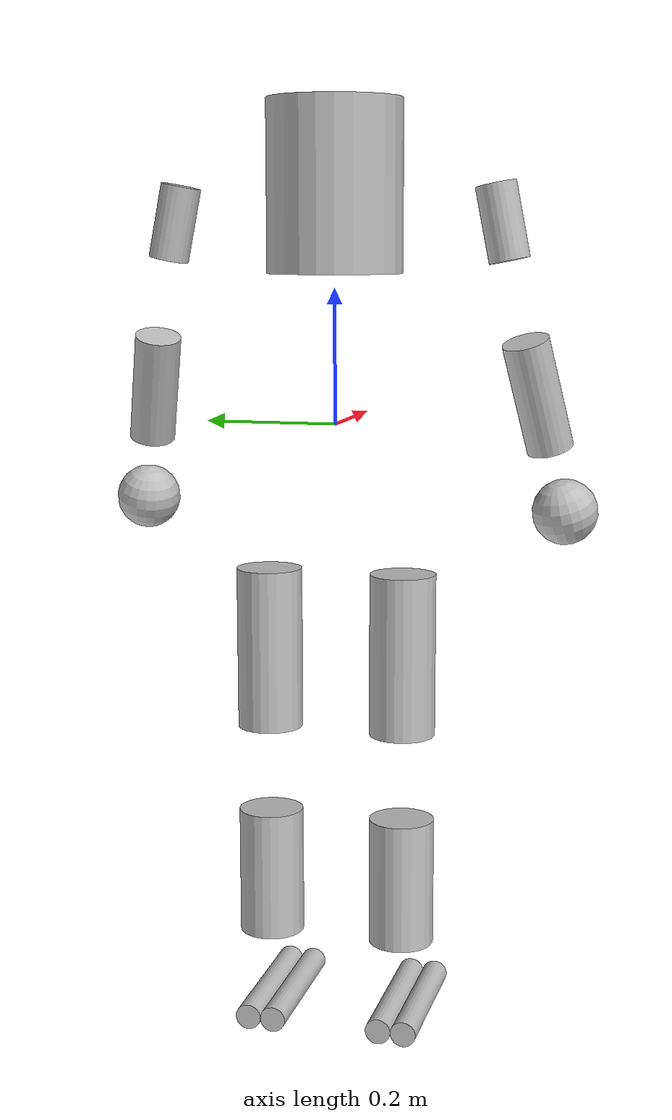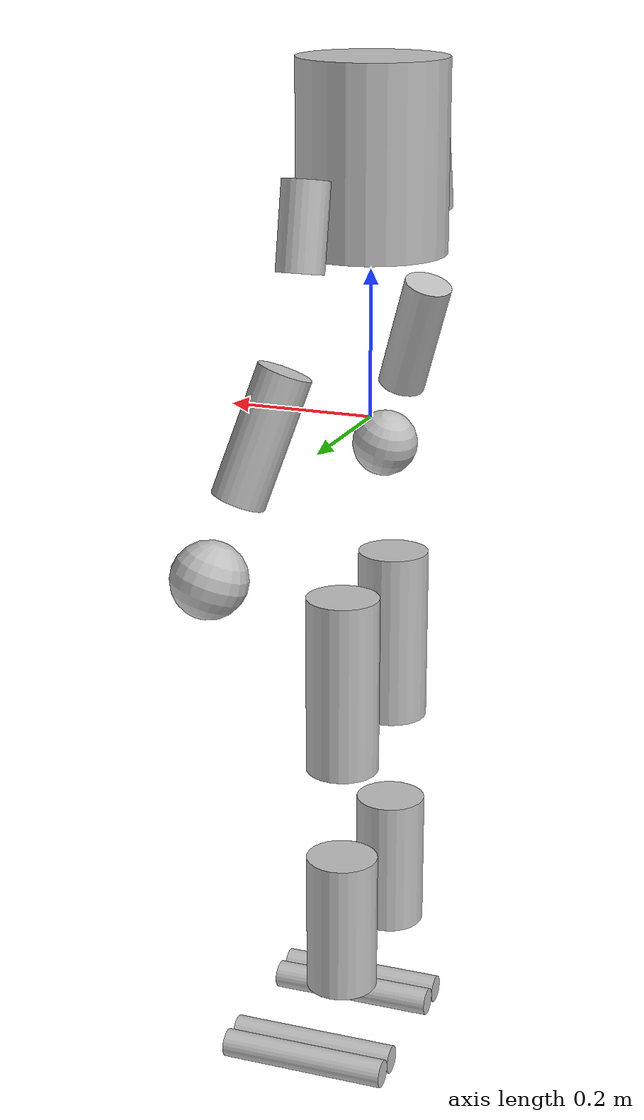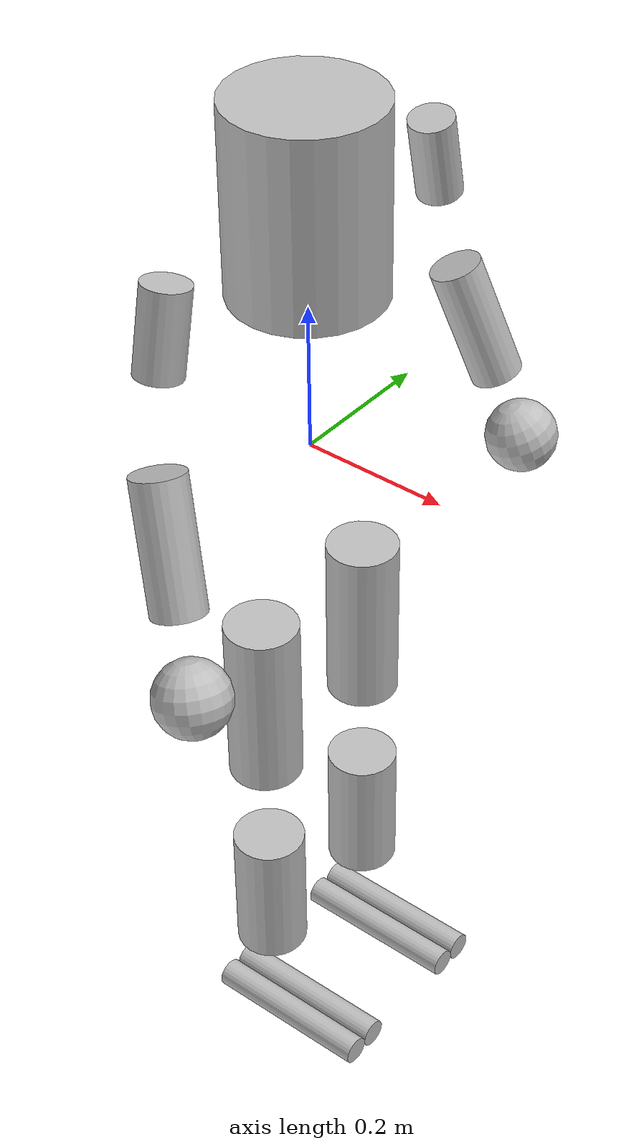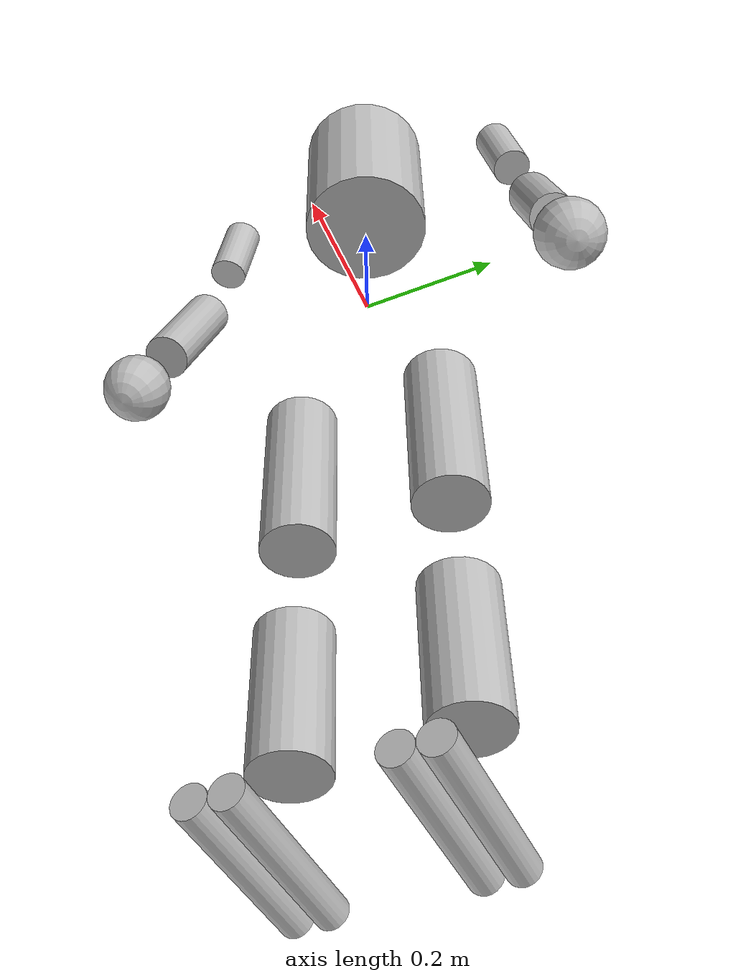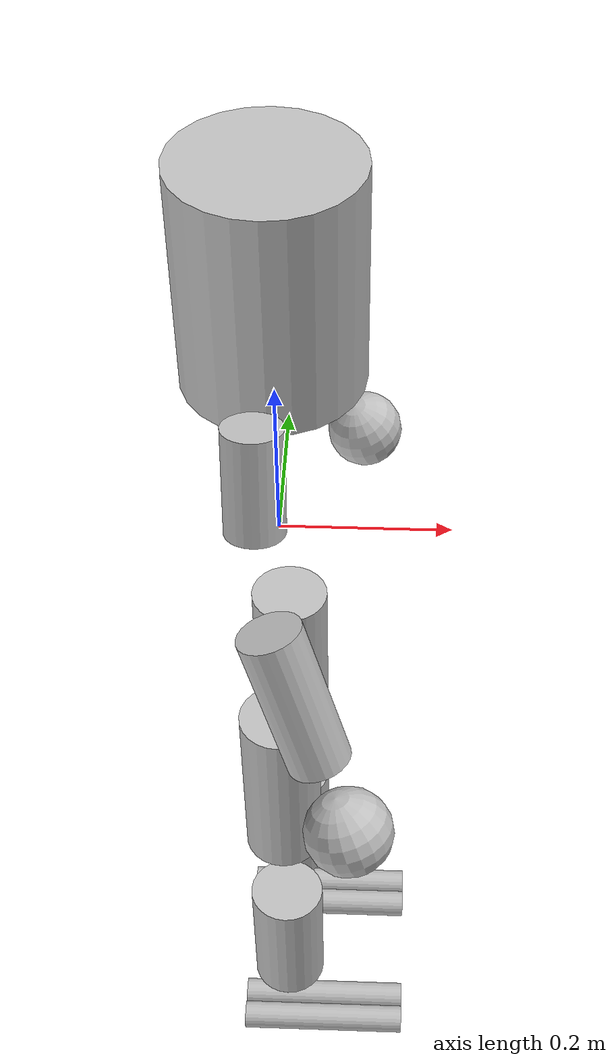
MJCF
<?xml version='1.0' encoding='utf-8'?>
<mujoco model="gr1t1_description">
  <compiler angle="radian" boundmass="1e-06" boundinertia="1e-08" meshdir=".." />
  <worldbody>
    <body name="base">
      <joint type="free" />
      <geom size="0.1 0.125" pos="0 0 0.3465" type="cylinder" rgba="0.752941 0.752941 0.752941 1" />
      <geom size="0.03 0.055" pos="0 0.247895 0.294678" quat="0.995004 0.0998334 0 0" type="cylinder" rgba="0.752941 0.752941 0.752941 1" />
      <geom size="0.035 0.085" pos="0.0356115 0.298303 0.0460688" quat="0.983831 0.0987124 -0.148692 -0.0149189" type="cylinder" rgba="0.752941 0.752941 0.752941 1" />
      <geom size="0.05" pos="0.0922184 0.334672 -0.133275" quat="0.983831 0.0987124 -0.148692 -0.0149189" rgba="0.75294 0.75294 0.75294 1" />
      <geom size="0.03 0.055" pos="0 -0.247915 0.294677" quat="0.995004 -0.0998334 0 0" type="cylinder" rgba="0.752941 0.752941 0.752941 1" />
      <geom size="0.035 0.085" pos="0.0356102 -0.298294 0.0460821" quat="0.983831 -0.0987124 -0.148692 0.0149189" type="cylinder" rgba="0.752941 0.752941 0.752941 1" />
      <geom size="0.05" pos="0.0922112 -0.334632 -0.133249" quat="0.983831 -0.0987124 -0.148692 0.0149189" rgba="0.75294 0.75294 0.75294 1" />
      <body name="l_thigh_roll" pos="-0.047999 0.105 -0.057493">
        <inertial pos="0.04163 3.4568e-05 -0.0021382" quat="0.575529 0.581908 -0.40597 0.406619" mass="1.1437" diaginertia="0.00117548 0.00100413 0.000943892" />
        <joint name="l_hip_roll" pos="0 0 0" axis="1 0 1.221e-05" range="-0.09 0.79" actuatorfrcrange="-60 60" />
        <body name="l_thigh_yaw" pos="0.048 0 -0.030499">
          <inertial pos="0.00018348 0.046462 -0.10389" quat="0.704251 -0.0226446 -0.0453749 0.708138" mass="3.9888" diaginertia="0.0163385 0.0100158 0.00924336" />
          <joint name="l_hip_yaw" pos="0 0 0" axis="1.2209e-05 6.8349e-05 1" range="-0.7 0.7" actuatorfrcrange="-45 45" />
          <body name="l_thigh_pitch" pos="0 0 -0.11">
            <inertial pos="0.0028493 -0.021688 -0.090886" quat="0.707411 -0.0125435 -0.0111264 0.706604" mass="6.369" diaginertia="0.0532352 0.0425096 0.0134363" />
            <joint name="l_hip_pitch" pos="0 0 0" axis="0 1 -6.8349e-05" range="-1.75 0.7" actuatorfrcrange="-130 130" />
            <geom size="0.05 0.125" pos="0 0 -0.15" type="cylinder" rgba="0.75294 0.75294 0.75294 1" />
            <body name="l_shank_pitch" pos="0 2.4606e-05 -0.36">
              <inertial pos="0.0024312 -2.9945e-05 -0.11554" quat="0.692137 0.00134576 0.00140217 0.721764" mass="2.1895" diaginertia="0.0162703 0.016117 0.00113627" />
              <joint name="l_knee_pitch" pos="0 0 0" axis="0 1 6.8349e-05" range="-0.09 1.92" actuatorfrcrange="-130 130" />
              <geom size="0.05 0.1" pos="0 0 -0.15" type="cylinder" rgba="0.75294 0.75294 0.75294 1" />
              <body name="l_foot_pitch" pos="0 2.3239e-05 -0.34">
                <inertial pos="0.034676 0.000314331 -0.0334936" quat="5.89238e-05 0.725218 -0.0004712 0.688519" mass="0.664335" diaginertia="0.00283063 0.0026195 0.000470536" />
                <joint name="l_ankle_pitch" pos="0 0 0" axis="0 1 6.8349e-05" range="-1.05 0.52" actuatorfrcrange="-16 16" />
                <geom name="l_foot_1" size="0.02 0.12" pos="0.05 0.02 -0.035" quat="0.707105 0 0.707108 0" type="cylinder" rgba="0.75294 0.75294 0.75294 1" />
                <geom name="l_foot_2" size="0.02 0.12" pos="0.05 -0.02 -0.035" quat="0.707105 0 0.707108 0" type="cylinder" rgba="0.75294 0.75294 0.75294 1" />
              </body>
            </body>
          </body>
        </body>
      </body>
      <body name="r_thigh_roll" pos="-0.047999 -0.105 -0.057508">
        <inertial pos="0.0416295 3.45678e-05 -0.00213824" quat="0.57555 0.581927 -0.405942 0.406589" mass="1.14367" diaginertia="0.00117548 0.00100417 0.000943891" />
        <joint name="r_hip_roll" pos="0 0 0" axis="1 0 1.221e-05" range="-0.79 0.09" actuatorfrcrange="-60 60" />
        <body name="r_thigh_yaw" pos="0.048 0 -0.030499">
          <inertial pos="-0.00159762 -0.0464482 -0.103899" quat="0.709186 -0.0420808 -0.0194028 0.703497" mass="3.98882" diaginertia="0.0163388 0.0100142 0.00924469" />
          <joint name="r_hip_yaw" pos="0 0 0" axis="1.2209e-05 6.8349e-05 1" range="-0.7 0.7" actuatorfrcrange="-45 45" />
          <body name="r_thigh_pitch" pos="0 0 -0.11">
            <inertial pos="0.002842 0.0217009 -0.0919987" quat="0.706586 -0.0113774 -0.0126258 0.707423" mass="6.36895" diaginertia="0.0532349 0.0424818 0.0134641" />
            <joint name="r_hip_pitch" pos="0 0 0" axis="0 1 6.8349e-05" range="-1.75 0.7" actuatorfrcrange="-130 130" />
            <geom size="0.05 0.125" pos="0 0 -0.15" type="cylinder" rgba="0.752941 0.752941 0.752941 1" />
            <body name="r_shank_pitch" pos="0 2.4606e-05 -0.36">
              <inertial pos="0.00236658 4.56188e-05 -0.115532" quat="0.71872 0.00154106 0.00120241 0.695296" mass="2.18947" diaginertia="0.0162708 0.0161183 0.00113536" />
              <joint name="r_knee_pitch" pos="0 0 0" axis="0 1 -6.8349e-05" range="-0.09 1.92" actuatorfrcrange="-130 130" />
              <geom size="0.05 0.1" pos="0 0 -0.15" type="cylinder" rgba="0.752941 0.752941 0.752941 1" />
              <body name="r_foot_pitch" pos="0 2.3239e-05 -0.34">
                <inertial pos="0.0385984 -0.000285473 -0.0346515" quat="-0.000154906 0.727179 0.000306418 0.686447" mass="0.660812" diaginertia="0.00294864 0.00273762 0.000474743" />
                <joint name="r_ankle_pitch" pos="0 0 0" axis="0 1 6.8349e-05" range="-1.05 0.52" actuatorfrcrange="-16 16" />
                <geom name="r_foot_1" size="0.02 0.12" pos="0.05 0.02 -0.035" quat="0.707105 0 0.707108 0" type="cylinder" rgba="0.75294 0.75294 0.75294 1" />
                <geom name="r_foot_2" size="0.02 0.12" pos="0.05 -0.02 -0.035" quat="0.707105 0 0.707108 0" type="cylinder" rgba="0.75294 0.75294 0.75294 1" />
              </body>
            </body>
          </body>
        </body>
      </body>
    </body>
  </worldbody>
</mujoco>
